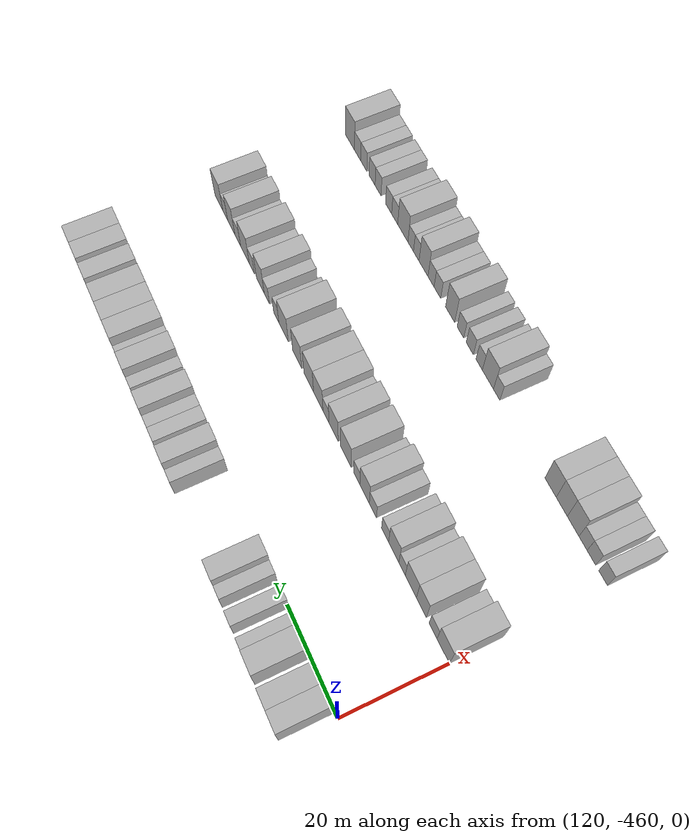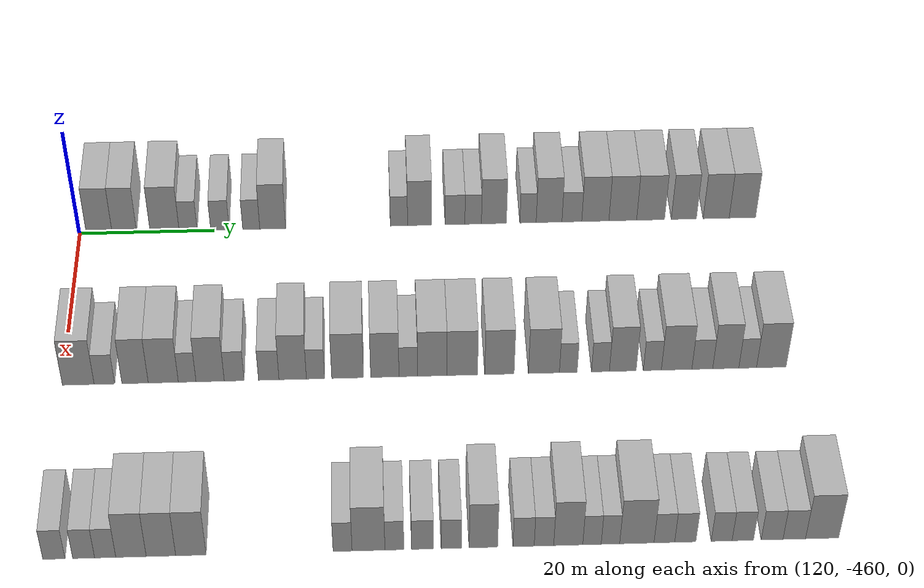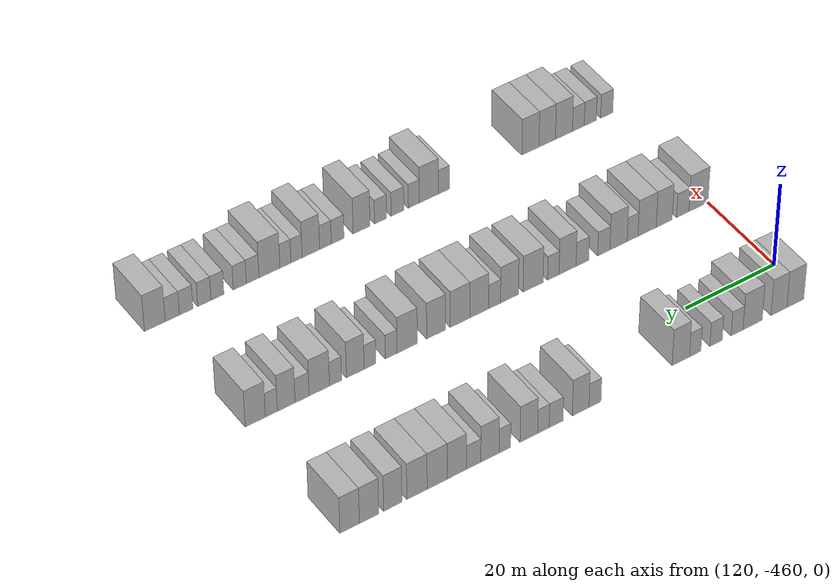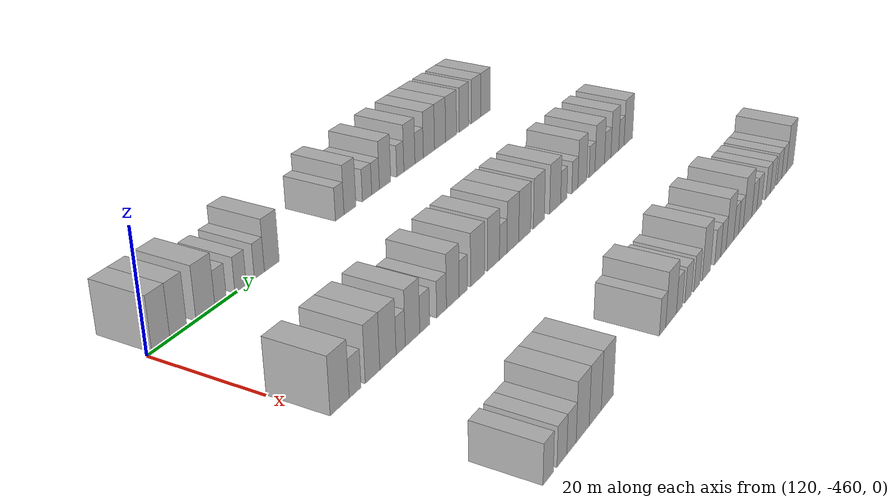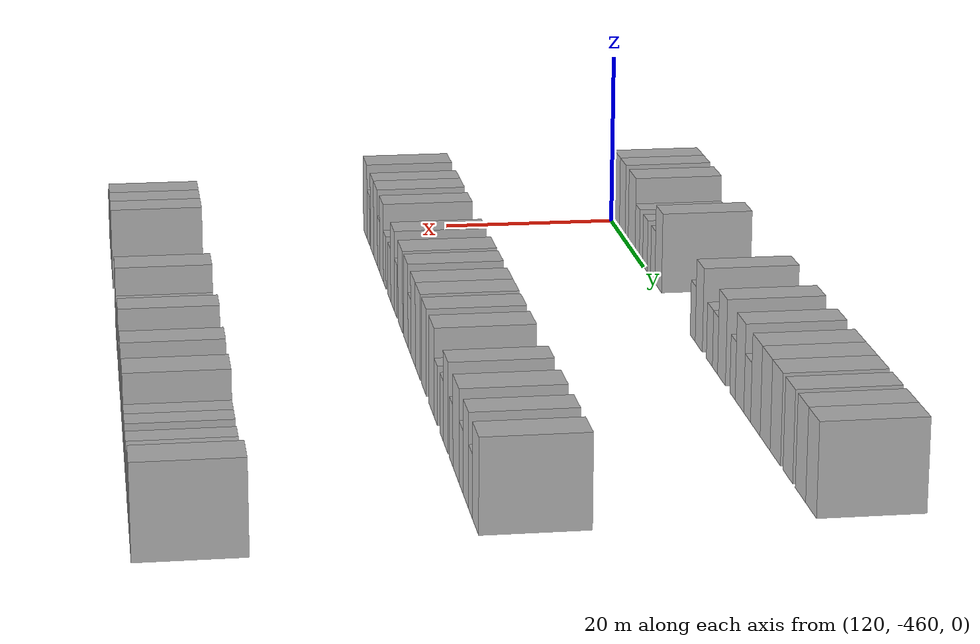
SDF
<sdf version="1.6">
 <world name="default">
  <model name="building_687">
   <static>1</static>
   <pose>115.0000 -457.0895 0 0.000000 0.000000 0.000000</pose>
   <link name="link">
    <pose>0 0 4.50 0 0 0</pose>
    <collision name="collision"><geometry><box><size>10.0000 3.8209 9.0000</size></box></geometry></collision>
    <visual name="visual">
     <cast_shadows>0</cast_shadows>
     <geometry><box><size>10.0000 3.8209 9.0000</size></box></geometry>
     <material>
      <script>
       <uri>model://HANNAS_wall/materials/scripts</uri>
       <uri>model://HANNAS_wall/materials/textures</uri>
       <name>vrc/HANNAS_wall</name>
      </script>
     </material>
    </visual>
   </link>
  </model>
  <model name="building_688">
   <static>1</static>
   <pose>115.0000 -453.3605 0 0.000000 0.000000 0.000000</pose>
   <link name="link">
    <pose>0 0 4.50 0 0 0</pose>
    <collision name="collision"><geometry><box><size>10.0000 3.6372 9.0000</size></box></geometry></collision>
    <visual name="visual">
     <cast_shadows>0</cast_shadows>
     <geometry><box><size>10.0000 3.6372 9.0000</size></box></geometry>
     <material>
      <script>
       <uri>model://HANNAS_wall/materials/scripts</uri>
       <uri>model://HANNAS_wall/materials/textures</uri>
       <name>vrc/HANNAS_wall</name>
      </script>
     </material>
    </visual>
   </link>
  </model>
  <model name="building_689">
   <static>1</static>
   <pose>115.0000 -447.3853 0 0.000000 0.000000 0.000000</pose>
   <link name="link">
    <pose>0 0 4.50 0 0 0</pose>
    <collision name="collision"><geometry><box><size>10.0000 4.3132 9.0000</size></box></geometry></collision>
    <visual name="visual">
     <cast_shadows>0</cast_shadows>
     <geometry><box><size>10.0000 4.3132 9.0000</size></box></geometry>
     <material>
      <script>
       <uri>model://HANNAS_wall/materials/scripts</uri>
       <uri>model://HANNAS_wall/materials/textures</uri>
       <name>vrc/HANNAS_wall</name>
      </script>
     </material>
    </visual>
   </link>
  </model>
  <model name="building_690">
   <static>1</static>
   <pose>115.0000 -443.8892 0 0.000000 0.000000 0.000000</pose>
   <link name="link">
    <pose>0 0 3.00 0 0 0</pose>
    <collision name="collision"><geometry><box><size>10.0000 2.6789 6.0000</size></box></geometry></collision>
    <visual name="visual">
     <cast_shadows>0</cast_shadows>
     <geometry><box><size>10.0000 2.6789 6.0000</size></box></geometry>
     <material>
      <script>
       <uri>model://HANNAS_wall/materials/scripts</uri>
       <uri>model://HANNAS_wall/materials/textures</uri>
       <name>vrc/HANNAS_wall</name>
      </script>
     </material>
    </visual>
   </link>
  </model>
  <model name="building_691">
   <static>1</static>
   <pose>115.0000 -439.1732 0 0.000000 0.000000 0.000000</pose>
   <link name="link">
    <pose>0 0 3.00 0 0 0</pose>
    <collision name="collision"><geometry><box><size>10.0000 2.7532 6.0000</size></box></geometry></collision>
    <visual name="visual">
     <cast_shadows>0</cast_shadows>
     <geometry><box><size>10.0000 2.7532 6.0000</size></box></geometry>
     <material>
      <script>
       <uri>model://HANNAS_wall/materials/scripts</uri>
       <uri>model://HANNAS_wall/materials/textures</uri>
       <name>vrc/HANNAS_wall</name>
      </script>
     </material>
    </visual>
   </link>
  </model>
  <model name="building_692">
   <static>1</static>
   <pose>115.0000 -434.5289 0 0.000000 0.000000 0.000000</pose>
   <link name="link">
    <pose>0 0 3.00 0 0 0</pose>
    <collision name="collision"><geometry><box><size>10.0000 2.5354 6.0000</size></box></geometry></collision>
    <visual name="visual">
     <cast_shadows>0</cast_shadows>
     <geometry><box><size>10.0000 2.5354 6.0000</size></box></geometry>
     <material>
      <script>
       <uri>model://HANNAS_wall/materials/scripts</uri>
       <uri>model://HANNAS_wall/materials/textures</uri>
       <name>vrc/HANNAS_wall</name>
      </script>
     </material>
    </visual>
   </link>
  </model>
  <model name="building_693">
   <static>1</static>
   <pose>115.0000 -431.3441 0 0.000000 0.000000 0.000000</pose>
   <link name="link">
    <pose>0 0 4.50 0 0 0</pose>
    <collision name="collision"><geometry><box><size>10.0000 3.8343 9.0000</size></box></geometry></collision>
    <visual name="visual">
     <cast_shadows>0</cast_shadows>
     <geometry><box><size>10.0000 3.8343 9.0000</size></box></geometry>
     <material>
      <script>
       <uri>model://HANNAS_wall/materials/scripts</uri>
       <uri>model://HANNAS_wall/materials/textures</uri>
       <name>vrc/HANNAS_wall</name>
      </script>
     </material>
    </visual>
   </link>
  </model>
  <model name="building_694">
   <static>1</static>
   <pose>115.0000 -412.5783 0 0.000000 0.000000 0.000000</pose>
   <link name="link">
    <pose>0 0 3.00 0 0 0</pose>
    <collision name="collision"><geometry><box><size>10.0000 2.5658 6.0000</size></box></geometry></collision>
    <visual name="visual">
     <cast_shadows>0</cast_shadows>
     <geometry><box><size>10.0000 2.5658 6.0000</size></box></geometry>
     <material>
      <script>
       <uri>model://HANNAS_wall/materials/scripts</uri>
       <uri>model://HANNAS_wall/materials/textures</uri>
       <name>vrc/HANNAS_wall</name>
      </script>
     </material>
    </visual>
   </link>
  </model>
  <model name="building_695">
   <static>1</static>
   <pose>115.0000 -409.4933 0 0.000000 0.000000 0.000000</pose>
   <link name="link">
    <pose>0 0 4.50 0 0 0</pose>
    <collision name="collision"><geometry><box><size>10.0000 3.6043 9.0000</size></box></geometry></collision>
    <visual name="visual">
     <cast_shadows>0</cast_shadows>
     <geometry><box><size>10.0000 3.6043 9.0000</size></box></geometry>
     <material>
      <script>
       <uri>model://HANNAS_wall/materials/scripts</uri>
       <uri>model://HANNAS_wall/materials/textures</uri>
       <name>vrc/HANNAS_wall</name>
      </script>
     </material>
    </visual>
   </link>
  </model>
  <model name="building_696">
   <static>1</static>
   <pose>115.0000 -404.2193 0 0.000000 0.000000 0.000000</pose>
   <link name="link">
    <pose>0 0 3.00 0 0 0</pose>
    <collision name="collision"><geometry><box><size>10.0000 2.9438 6.0000</size></box></geometry></collision>
    <visual name="visual">
     <cast_shadows>0</cast_shadows>
     <geometry><box><size>10.0000 2.9438 6.0000</size></box></geometry>
     <material>
      <script>
       <uri>model://HANNAS_wall/materials/scripts</uri>
       <uri>model://HANNAS_wall/materials/textures</uri>
       <name>vrc/HANNAS_wall</name>
      </script>
     </material>
    </visual>
   </link>
  </model>
  <model name="building_697">
   <static>1</static>
   <pose>115.0000 -401.5117 0 0.000000 0.000000 0.000000</pose>
   <link name="link">
    <pose>0 0 3.00 0 0 0</pose>
    <collision name="collision"><geometry><box><size>10.0000 2.4714 6.0000</size></box></geometry></collision>
    <visual name="visual">
     <cast_shadows>0</cast_shadows>
     <geometry><box><size>10.0000 2.4714 6.0000</size></box></geometry>
     <material>
      <script>
       <uri>model://HANNAS_wall/materials/scripts</uri>
       <uri>model://HANNAS_wall/materials/textures</uri>
       <name>vrc/HANNAS_wall</name>
      </script>
     </material>
    </visual>
   </link>
  </model>
  <model name="building_698">
   <static>1</static>
   <pose>115.0000 -398.4111 0 0.000000 0.000000 0.000000</pose>
   <link name="link">
    <pose>0 0 4.50 0 0 0</pose>
    <collision name="collision"><geometry><box><size>10.0000 3.7298 9.0000</size></box></geometry></collision>
    <visual name="visual">
     <cast_shadows>0</cast_shadows>
     <geometry><box><size>10.0000 3.7298 9.0000</size></box></geometry>
     <material>
      <script>
       <uri>model://HANNAS_wall/materials/scripts</uri>
       <uri>model://HANNAS_wall/materials/textures</uri>
       <name>vrc/HANNAS_wall</name>
      </script>
     </material>
    </visual>
   </link>
  </model>
  <model name="building_699">
   <static>1</static>
   <pose>115.0000 -393.3273 0 0.000000 0.000000 0.000000</pose>
   <link name="link">
    <pose>0 0 3.00 0 0 0</pose>
    <collision name="collision"><geometry><box><size>10.0000 2.4378 6.0000</size></box></geometry></collision>
    <visual name="visual">
     <cast_shadows>0</cast_shadows>
     <geometry><box><size>10.0000 2.4378 6.0000</size></box></geometry>
     <material>
      <script>
       <uri>model://HANNAS_wall/materials/scripts</uri>
       <uri>model://HANNAS_wall/materials/textures</uri>
       <name>vrc/HANNAS_wall</name>
      </script>
     </material>
    </visual>
   </link>
  </model>
  <model name="building_700">
   <static>1</static>
   <pose>115.0000 -390.1832 0 0.000000 0.000000 0.000000</pose>
   <link name="link">
    <pose>0 0 4.50 0 0 0</pose>
    <collision name="collision"><geometry><box><size>10.0000 3.8503 9.0000</size></box></geometry></collision>
    <visual name="visual">
     <cast_shadows>0</cast_shadows>
     <geometry><box><size>10.0000 3.8503 9.0000</size></box></geometry>
     <material>
      <script>
       <uri>model://HANNAS_wall/materials/scripts</uri>
       <uri>model://HANNAS_wall/materials/textures</uri>
       <name>vrc/HANNAS_wall</name>
      </script>
     </material>
    </visual>
   </link>
  </model>
  <model name="building_701">
   <static>1</static>
   <pose>115.0000 -386.7784 0 0.000000 0.000000 0.000000</pose>
   <link name="link">
    <pose>0 0 3.00 0 0 0</pose>
    <collision name="collision"><geometry><box><size>10.0000 2.9593 6.0000</size></box></geometry></collision>
    <visual name="visual">
     <cast_shadows>0</cast_shadows>
     <geometry><box><size>10.0000 2.9593 6.0000</size></box></geometry>
     <material>
      <script>
       <uri>model://HANNAS_wall/materials/scripts</uri>
       <uri>model://HANNAS_wall/materials/textures</uri>
       <name>vrc/HANNAS_wall</name>
      </script>
     </material>
    </visual>
   </link>
  </model>
  <model name="building_702">
   <static>1</static>
   <pose>115.0000 -383.2661 0 0.000000 0.000000 0.000000</pose>
   <link name="link">
    <pose>0 0 4.50 0 0 0</pose>
    <collision name="collision"><geometry><box><size>10.0000 4.0654 9.0000</size></box></geometry></collision>
    <visual name="visual">
     <cast_shadows>0</cast_shadows>
     <geometry><box><size>10.0000 4.0654 9.0000</size></box></geometry>
     <material>
      <script>
       <uri>model://HANNAS_wall/materials/scripts</uri>
       <uri>model://HANNAS_wall/materials/textures</uri>
       <name>vrc/HANNAS_wall</name>
      </script>
     </material>
    </visual>
   </link>
  </model>
  <model name="building_703">
   <static>1</static>
   <pose>115.0000 -379.1564 0 0.000000 0.000000 0.000000</pose>
   <link name="link">
    <pose>0 0 4.50 0 0 0</pose>
    <collision name="collision"><geometry><box><size>10.0000 4.1540 9.0000</size></box></geometry></collision>
    <visual name="visual">
     <cast_shadows>0</cast_shadows>
     <geometry><box><size>10.0000 4.1540 9.0000</size></box></geometry>
     <material>
      <script>
       <uri>model://HANNAS_wall/materials/scripts</uri>
       <uri>model://HANNAS_wall/materials/textures</uri>
       <name>vrc/HANNAS_wall</name>
      </script>
     </material>
    </visual>
   </link>
  </model>
  <model name="building_704">
   <static>1</static>
   <pose>115.0000 -374.9879 0 0.000000 0.000000 0.000000</pose>
   <link name="link">
    <pose>0 0 4.50 0 0 0</pose>
    <collision name="collision"><geometry><box><size>10.0000 4.1829 9.0000</size></box></geometry></collision>
    <visual name="visual">
     <cast_shadows>0</cast_shadows>
     <geometry><box><size>10.0000 4.1829 9.0000</size></box></geometry>
     <material>
      <script>
       <uri>model://HANNAS_wall/materials/scripts</uri>
       <uri>model://HANNAS_wall/materials/textures</uri>
       <name>vrc/HANNAS_wall</name>
      </script>
     </material>
    </visual>
   </link>
  </model>
  <model name="building_705">
   <static>1</static>
   <pose>115.0000 -370.0102 0 0.000000 0.000000 0.000000</pose>
   <link name="link">
    <pose>0 0 4.50 0 0 0</pose>
    <collision name="collision"><geometry><box><size>10.0000 3.7726 9.0000</size></box></geometry></collision>
    <visual name="visual">
     <cast_shadows>0</cast_shadows>
     <geometry><box><size>10.0000 3.7726 9.0000</size></box></geometry>
     <material>
      <script>
       <uri>model://HANNAS_wall/materials/scripts</uri>
       <uri>model://HANNAS_wall/materials/textures</uri>
       <name>vrc/HANNAS_wall</name>
      </script>
     </material>
    </visual>
   </link>
  </model>
  <model name="building_706">
   <static>1</static>
   <pose>115.0000 -365.1681 0 0.000000 0.000000 0.000000</pose>
   <link name="link">
    <pose>0 0 4.50 0 0 0</pose>
    <collision name="collision"><geometry><box><size>10.0000 3.9117 9.0000</size></box></geometry></collision>
    <visual name="visual">
     <cast_shadows>0</cast_shadows>
     <geometry><box><size>10.0000 3.9117 9.0000</size></box></geometry>
     <material>
      <script>
       <uri>model://HANNAS_wall/materials/scripts</uri>
       <uri>model://HANNAS_wall/materials/textures</uri>
       <name>vrc/HANNAS_wall</name>
      </script>
     </material>
    </visual>
   </link>
  </model>
  <model name="building_707">
   <static>1</static>
   <pose>115.0000 -361.2288 0 0.000000 0.000000 0.000000</pose>
   <link name="link">
    <pose>0 0 4.50 0 0 0</pose>
    <collision name="collision"><geometry><box><size>10.0000 3.9670 9.0000</size></box></geometry></collision>
    <visual name="visual">
     <cast_shadows>0</cast_shadows>
     <geometry><box><size>10.0000 3.9670 9.0000</size></box></geometry>
     <material>
      <script>
       <uri>model://HANNAS_wall/materials/scripts</uri>
       <uri>model://HANNAS_wall/materials/textures</uri>
       <name>vrc/HANNAS_wall</name>
      </script>
     </material>
    </visual>
   </link>
  </model>
  <model name="building_912">
   <static>1</static>
   <pose>145.0000 -457.7989 0 0.000000 0.000000 0.000000</pose>
   <link name="link">
    <pose>0 0 4.50 0 0 0</pose>
    <collision name="collision"><geometry><box><size>10.0000 4.4022 9.0000</size></box></geometry></collision>
    <visual name="visual">
     <cast_shadows>0</cast_shadows>
     <geometry><box><size>10.0000 4.4022 9.0000</size></box></geometry>
     <material>
      <script>
       <uri>model://HANNAS_wall/materials/scripts</uri>
       <uri>model://HANNAS_wall/materials/textures</uri>
       <name>vrc/HANNAS_wall</name>
      </script>
     </material>
    </visual>
   </link>
  </model>
  <model name="building_913">
   <static>1</static>
   <pose>145.0000 -454.1747 0 0.000000 0.000000 0.000000</pose>
   <link name="link">
    <pose>0 0 3.00 0 0 0</pose>
    <collision name="collision"><geometry><box><size>10.0000 2.8462 6.0000</size></box></geometry></collision>
    <visual name="visual">
     <cast_shadows>0</cast_shadows>
     <geometry><box><size>10.0000 2.8462 6.0000</size></box></geometry>
     <material>
      <script>
       <uri>model://HANNAS_wall/materials/scripts</uri>
       <uri>model://HANNAS_wall/materials/textures</uri>
       <name>vrc/HANNAS_wall</name>
      </script>
     </material>
    </visual>
   </link>
  </model>
  <model name="building_914">
   <static>1</static>
   <pose>145.0000 -449.9264 0 0.000000 0.000000 0.000000</pose>
   <link name="link">
    <pose>0 0 4.50 0 0 0</pose>
    <collision name="collision"><geometry><box><size>10.0000 3.6504 9.0000</size></box></geometry></collision>
    <visual name="visual">
     <cast_shadows>0</cast_shadows>
     <geometry><box><size>10.0000 3.6504 9.0000</size></box></geometry>
     <material>
      <script>
       <uri>model://HANNAS_wall/materials/scripts</uri>
       <uri>model://HANNAS_wall/materials/textures</uri>
       <name>vrc/HANNAS_wall</name>
      </script>
     </material>
    </visual>
   </link>
  </model>
  <model name="building_915">
   <static>1</static>
   <pose>145.0000 -446.0148 0 0.000000 0.000000 0.000000</pose>
   <link name="link">
    <pose>0 0 4.50 0 0 0</pose>
    <collision name="collision"><geometry><box><size>10.0000 4.1729 9.0000</size></box></geometry></collision>
    <visual name="visual">
     <cast_shadows>0</cast_shadows>
     <geometry><box><size>10.0000 4.1729 9.0000</size></box></geometry>
     <material>
      <script>
       <uri>model://HANNAS_wall/materials/scripts</uri>
       <uri>model://HANNAS_wall/materials/textures</uri>
       <name>vrc/HANNAS_wall</name>
      </script>
     </material>
    </visual>
   </link>
  </model>
  <model name="building_916">
   <static>1</static>
   <pose>145.0000 -442.7020 0 0.000000 0.000000 0.000000</pose>
   <link name="link">
    <pose>0 0 3.00 0 0 0</pose>
    <collision name="collision"><geometry><box><size>10.0000 2.4528 6.0000</size></box></geometry></collision>
    <visual name="visual">
     <cast_shadows>0</cast_shadows>
     <geometry><box><size>10.0000 2.4528 6.0000</size></box></geometry>
     <material>
      <script>
       <uri>model://HANNAS_wall/materials/scripts</uri>
       <uri>model://HANNAS_wall/materials/textures</uri>
       <name>vrc/HANNAS_wall</name>
      </script>
     </material>
    </visual>
   </link>
  </model>
  <model name="building_917">
   <static>1</static>
   <pose>145.0000 -439.5113 0 0.000000 0.000000 0.000000</pose>
   <link name="link">
    <pose>0 0 4.50 0 0 0</pose>
    <collision name="collision"><geometry><box><size>10.0000 3.9284 9.0000</size></box></geometry></collision>
    <visual name="visual">
     <cast_shadows>0</cast_shadows>
     <geometry><box><size>10.0000 3.9284 9.0000</size></box></geometry>
     <material>
      <script>
       <uri>model://HANNAS_wall/materials/scripts</uri>
       <uri>model://HANNAS_wall/materials/textures</uri>
       <name>vrc/HANNAS_wall</name>
      </script>
     </material>
    </visual>
   </link>
  </model>
  <model name="building_918">
   <static>1</static>
   <pose>145.0000 -436.1663 0 0.000000 0.000000 0.000000</pose>
   <link name="link">
    <pose>0 0 3.00 0 0 0</pose>
    <collision name="collision"><geometry><box><size>10.0000 2.7617 6.0000</size></box></geometry></collision>
    <visual name="visual">
     <cast_shadows>0</cast_shadows>
     <geometry><box><size>10.0000 2.7617 6.0000</size></box></geometry>
     <material>
      <script>
       <uri>model://HANNAS_wall/materials/scripts</uri>
       <uri>model://HANNAS_wall/materials/textures</uri>
       <name>vrc/HANNAS_wall</name>
      </script>
     </material>
    </visual>
   </link>
  </model>
  <model name="building_919">
   <static>1</static>
   <pose>145.0000 -431.3639 0 0.000000 0.000000 0.000000</pose>
   <link name="link">
    <pose>0 0 3.00 0 0 0</pose>
    <collision name="collision"><geometry><box><size>10.0000 2.8430 6.0000</size></box></geometry></collision>
    <visual name="visual">
     <cast_shadows>0</cast_shadows>
     <geometry><box><size>10.0000 2.8430 6.0000</size></box></geometry>
     <material>
      <script>
       <uri>model://HANNAS_wall/materials/scripts</uri>
       <uri>model://HANNAS_wall/materials/textures</uri>
       <name>vrc/HANNAS_wall</name>
      </script>
     </material>
    </visual>
   </link>
  </model>
  <model name="building_920">
   <static>1</static>
   <pose>145.0000 -428.0373 0 0.000000 0.000000 0.000000</pose>
   <link name="link">
    <pose>0 0 4.50 0 0 0</pose>
    <collision name="collision"><geometry><box><size>10.0000 3.8101 9.0000</size></box></geometry></collision>
    <visual name="visual">
     <cast_shadows>0</cast_shadows>
     <geometry><box><size>10.0000 3.8101 9.0000</size></box></geometry>
     <material>
      <script>
       <uri>model://HANNAS_wall/materials/scripts</uri>
       <uri>model://HANNAS_wall/materials/textures</uri>
       <name>vrc/HANNAS_wall</name>
      </script>
     </material>
    </visual>
   </link>
  </model>
  <model name="building_921">
   <static>1</static>
   <pose>145.0000 -424.8645 0 0.000000 0.000000 0.000000</pose>
   <link name="link">
    <pose>0 0 3.00 0 0 0</pose>
    <collision name="collision"><geometry><box><size>10.0000 2.5356 6.0000</size></box></geometry></collision>
    <visual name="visual">
     <cast_shadows>0</cast_shadows>
     <geometry><box><size>10.0000 2.5356 6.0000</size></box></geometry>
     <material>
      <script>
       <uri>model://HANNAS_wall/materials/scripts</uri>
       <uri>model://HANNAS_wall/materials/textures</uri>
       <name>vrc/HANNAS_wall</name>
      </script>
     </material>
    </visual>
   </link>
  </model>
  <model name="building_922">
   <static>1</static>
   <pose>145.0000 -420.3850 0 0.000000 0.000000 0.000000</pose>
   <link name="link">
    <pose>0 0 4.50 0 0 0</pose>
    <collision name="collision"><geometry><box><size>10.0000 4.4234 9.0000</size></box></geometry></collision>
    <visual name="visual">
     <cast_shadows>0</cast_shadows>
     <geometry><box><size>10.0000 4.4234 9.0000</size></box></geometry>
     <material>
      <script>
       <uri>model://HANNAS_wall/materials/scripts</uri>
       <uri>model://HANNAS_wall/materials/textures</uri>
       <name>vrc/HANNAS_wall</name>
      </script>
     </material>
    </visual>
   </link>
  </model>
  <model name="building_923">
   <static>1</static>
   <pose>145.0000 -415.2059 0 0.000000 0.000000 0.000000</pose>
   <link name="link">
    <pose>0 0 4.50 0 0 0</pose>
    <collision name="collision"><geometry><box><size>10.0000 3.9348 9.0000</size></box></geometry></collision>
    <visual name="visual">
     <cast_shadows>0</cast_shadows>
     <geometry><box><size>10.0000 3.9348 9.0000</size></box></geometry>
     <material>
      <script>
       <uri>model://HANNAS_wall/materials/scripts</uri>
       <uri>model://HANNAS_wall/materials/textures</uri>
       <name>vrc/HANNAS_wall</name>
      </script>
     </material>
    </visual>
   </link>
  </model>
  <model name="building_924">
   <static>1</static>
   <pose>145.0000 -411.9417 0 0.000000 0.000000 0.000000</pose>
   <link name="link">
    <pose>0 0 3.00 0 0 0</pose>
    <collision name="collision"><geometry><box><size>10.0000 2.5937 6.0000</size></box></geometry></collision>
    <visual name="visual">
     <cast_shadows>0</cast_shadows>
     <geometry><box><size>10.0000 2.5937 6.0000</size></box></geometry>
     <material>
      <script>
       <uri>model://HANNAS_wall/materials/scripts</uri>
       <uri>model://HANNAS_wall/materials/textures</uri>
       <name>vrc/HANNAS_wall</name>
      </script>
     </material>
    </visual>
   </link>
  </model>
  <model name="building_925">
   <static>1</static>
   <pose>145.0000 -408.5975 0 0.000000 0.000000 0.000000</pose>
   <link name="link">
    <pose>0 0 4.50 0 0 0</pose>
    <collision name="collision"><geometry><box><size>10.0000 4.0947 9.0000</size></box></geometry></collision>
    <visual name="visual">
     <cast_shadows>0</cast_shadows>
     <geometry><box><size>10.0000 4.0947 9.0000</size></box></geometry>
     <material>
      <script>
       <uri>model://HANNAS_wall/materials/scripts</uri>
       <uri>model://HANNAS_wall/materials/textures</uri>
       <name>vrc/HANNAS_wall</name>
      </script>
     </material>
    </visual>
   </link>
  </model>
  <model name="building_926">
   <static>1</static>
   <pose>145.0000 -404.4101 0 0.000000 0.000000 0.000000</pose>
   <link name="link">
    <pose>0 0 4.50 0 0 0</pose>
    <collision name="collision"><geometry><box><size>10.0000 4.2801 9.0000</size></box></geometry></collision>
    <visual name="visual">
     <cast_shadows>0</cast_shadows>
     <geometry><box><size>10.0000 4.2801 9.0000</size></box></geometry>
     <material>
      <script>
       <uri>model://HANNAS_wall/materials/scripts</uri>
       <uri>model://HANNAS_wall/materials/textures</uri>
       <name>vrc/HANNAS_wall</name>
      </script>
     </material>
    </visual>
   </link>
  </model>
  <model name="building_927">
   <static>1</static>
   <pose>145.0000 -399.2185 0 0.000000 0.000000 0.000000</pose>
   <link name="link">
    <pose>0 0 4.50 0 0 0</pose>
    <collision name="collision"><geometry><box><size>10.0000 4.1031 9.0000</size></box></geometry></collision>
    <visual name="visual">
     <cast_shadows>0</cast_shadows>
     <geometry><box><size>10.0000 4.1031 9.0000</size></box></geometry>
     <material>
      <script>
       <uri>model://HANNAS_wall/materials/scripts</uri>
       <uri>model://HANNAS_wall/materials/textures</uri>
       <name>vrc/HANNAS_wall</name>
      </script>
     </material>
    </visual>
   </link>
  </model>
  <model name="building_928">
   <static>1</static>
   <pose>145.0000 -392.9979 0 0.000000 0.000000 0.000000</pose>
   <link name="link">
    <pose>0 0 4.50 0 0 0</pose>
    <collision name="collision"><geometry><box><size>10.0000 4.3382 9.0000</size></box></geometry></collision>
    <visual name="visual">
     <cast_shadows>0</cast_shadows>
     <geometry><box><size>10.0000 4.3382 9.0000</size></box></geometry>
     <material>
      <script>
       <uri>model://HANNAS_wall/materials/scripts</uri>
       <uri>model://HANNAS_wall/materials/textures</uri>
       <name>vrc/HANNAS_wall</name>
      </script>
     </material>
    </visual>
   </link>
  </model>
  <model name="building_929">
   <static>1</static>
   <pose>145.0000 -389.5846 0 0.000000 0.000000 0.000000</pose>
   <link name="link">
    <pose>0 0 3.00 0 0 0</pose>
    <collision name="collision"><geometry><box><size>10.0000 2.4885 6.0000</size></box></geometry></collision>
    <visual name="visual">
     <cast_shadows>0</cast_shadows>
     <geometry><box><size>10.0000 2.4885 6.0000</size></box></geometry>
     <material>
      <script>
       <uri>model://HANNAS_wall/materials/scripts</uri>
       <uri>model://HANNAS_wall/materials/textures</uri>
       <name>vrc/HANNAS_wall</name>
      </script>
     </material>
    </visual>
   </link>
  </model>
  <model name="building_930">
   <static>1</static>
   <pose>145.0000 -385.0871 0 0.000000 0.000000 0.000000</pose>
   <link name="link">
    <pose>0 0 3.00 0 0 0</pose>
    <collision name="collision"><geometry><box><size>10.0000 2.5064 6.0000</size></box></geometry></collision>
    <visual name="visual">
     <cast_shadows>0</cast_shadows>
     <geometry><box><size>10.0000 2.5064 6.0000</size></box></geometry>
     <material>
      <script>
       <uri>model://HANNAS_wall/materials/scripts</uri>
       <uri>model://HANNAS_wall/materials/textures</uri>
       <name>vrc/HANNAS_wall</name>
      </script>
     </material>
    </visual>
   </link>
  </model>
  <model name="building_931">
   <static>1</static>
   <pose>145.0000 -381.9576 0 0.000000 0.000000 0.000000</pose>
   <link name="link">
    <pose>0 0 4.50 0 0 0</pose>
    <collision name="collision"><geometry><box><size>10.0000 3.7526 9.0000</size></box></geometry></collision>
    <visual name="visual">
     <cast_shadows>0</cast_shadows>
     <geometry><box><size>10.0000 3.7526 9.0000</size></box></geometry>
     <material>
      <script>
       <uri>model://HANNAS_wall/materials/scripts</uri>
       <uri>model://HANNAS_wall/materials/textures</uri>
       <name>vrc/HANNAS_wall</name>
      </script>
     </material>
    </visual>
   </link>
  </model>
  <model name="building_932">
   <static>1</static>
   <pose>145.0000 -377.8148 0 0.000000 0.000000 0.000000</pose>
   <link name="link">
    <pose>0 0 3.00 0 0 0</pose>
    <collision name="collision"><geometry><box><size>10.0000 2.5330 6.0000</size></box></geometry></collision>
    <visual name="visual">
     <cast_shadows>0</cast_shadows>
     <geometry><box><size>10.0000 2.5330 6.0000</size></box></geometry>
     <material>
      <script>
       <uri>model://HANNAS_wall/materials/scripts</uri>
       <uri>model://HANNAS_wall/materials/textures</uri>
       <name>vrc/HANNAS_wall</name>
      </script>
     </material>
    </visual>
   </link>
  </model>
  <model name="building_933">
   <static>1</static>
   <pose>145.0000 -374.4097 0 0.000000 0.000000 0.000000</pose>
   <link name="link">
    <pose>0 0 4.50 0 0 0</pose>
    <collision name="collision"><geometry><box><size>10.0000 4.2773 9.0000</size></box></geometry></collision>
    <visual name="visual">
     <cast_shadows>0</cast_shadows>
     <geometry><box><size>10.0000 4.2773 9.0000</size></box></geometry>
     <material>
      <script>
       <uri>model://HANNAS_wall/materials/scripts</uri>
       <uri>model://HANNAS_wall/materials/textures</uri>
       <name>vrc/HANNAS_wall</name>
      </script>
     </material>
    </visual>
   </link>
  </model>
  <model name="building_934">
   <static>1</static>
   <pose>145.0000 -370.8080 0 0.000000 0.000000 0.000000</pose>
   <link name="link">
    <pose>0 0 3.00 0 0 0</pose>
    <collision name="collision"><geometry><box><size>10.0000 2.9260 6.0000</size></box></geometry></collision>
    <visual name="visual">
     <cast_shadows>0</cast_shadows>
     <geometry><box><size>10.0000 2.9260 6.0000</size></box></geometry>
     <material>
      <script>
       <uri>model://HANNAS_wall/materials/scripts</uri>
       <uri>model://HANNAS_wall/materials/textures</uri>
       <name>vrc/HANNAS_wall</name>
      </script>
     </material>
    </visual>
   </link>
  </model>
  <model name="building_935">
   <static>1</static>
   <pose>145.0000 -367.5120 0 0.000000 0.000000 0.000000</pose>
   <link name="link">
    <pose>0 0 4.50 0 0 0</pose>
    <collision name="collision"><geometry><box><size>10.0000 3.6662 9.0000</size></box></geometry></collision>
    <visual name="visual">
     <cast_shadows>0</cast_shadows>
     <geometry><box><size>10.0000 3.6662 9.0000</size></box></geometry>
     <material>
      <script>
       <uri>model://HANNAS_wall/materials/scripts</uri>
       <uri>model://HANNAS_wall/materials/textures</uri>
       <name>vrc/HANNAS_wall</name>
      </script>
     </material>
    </visual>
   </link>
  </model>
  <model name="building_936">
   <static>1</static>
   <pose>145.0000 -364.4337 0 0.000000 0.000000 0.000000</pose>
   <link name="link">
    <pose>0 0 3.00 0 0 0</pose>
    <collision name="collision"><geometry><box><size>10.0000 2.4903 6.0000</size></box></geometry></collision>
    <visual name="visual">
     <cast_shadows>0</cast_shadows>
     <geometry><box><size>10.0000 2.4903 6.0000</size></box></geometry>
     <material>
      <script>
       <uri>model://HANNAS_wall/materials/scripts</uri>
       <uri>model://HANNAS_wall/materials/textures</uri>
       <name>vrc/HANNAS_wall</name>
      </script>
     </material>
    </visual>
   </link>
  </model>
  <model name="building_937">
   <static>1</static>
   <pose>145.0000 -361.1114 0 0.000000 0.000000 0.000000</pose>
   <link name="link">
    <pose>0 0 4.50 0 0 0</pose>
    <collision name="collision"><geometry><box><size>10.0000 4.1544 9.0000</size></box></geometry></collision>
    <visual name="visual">
     <cast_shadows>0</cast_shadows>
     <geometry><box><size>10.0000 4.1544 9.0000</size></box></geometry>
     <material>
      <script>
       <uri>model://HANNAS_wall/materials/scripts</uri>
       <uri>model://HANNAS_wall/materials/textures</uri>
       <name>vrc/HANNAS_wall</name>
      </script>
     </material>
    </visual>
   </link>
  </model>
  <model name="building_1153">
   <static>1</static>
   <pose>175.0000 -458.5691 0 0.000000 0.000000 0.000000</pose>
   <link name="link">
    <pose>0 0 3.00 0 0 0</pose>
    <collision name="collision"><geometry><box><size>10.0000 2.8618 6.0000</size></box></geometry></collision>
    <visual name="visual">
     <cast_shadows>0</cast_shadows>
     <geometry><box><size>10.0000 2.8618 6.0000</size></box></geometry>
     <material>
      <script>
       <uri>model://HANNAS_wall/materials/scripts</uri>
       <uri>model://HANNAS_wall/materials/textures</uri>
       <name>vrc/HANNAS_wall</name>
      </script>
     </material>
    </visual>
   </link>
  </model>
  <model name="building_1154">
   <static>1</static>
   <pose>175.0000 -454.7284 0 0.000000 0.000000 0.000000</pose>
   <link name="link">
    <pose>0 0 3.00 0 0 0</pose>
    <collision name="collision"><geometry><box><size>10.0000 2.8198 6.0000</size></box></geometry></collision>
    <visual name="visual">
     <cast_shadows>0</cast_shadows>
     <geometry><box><size>10.0000 2.8198 6.0000</size></box></geometry>
     <material>
      <script>
       <uri>model://HANNAS_wall/materials/scripts</uri>
       <uri>model://HANNAS_wall/materials/textures</uri>
       <name>vrc/HANNAS_wall</name>
      </script>
     </material>
    </visual>
   </link>
  </model>
  <model name="building_1155">
   <static>1</static>
   <pose>175.0000 -451.9525 0 0.000000 0.000000 0.000000</pose>
   <link name="link">
    <pose>0 0 3.00 0 0 0</pose>
    <collision name="collision"><geometry><box><size>10.0000 2.7318 6.0000</size></box></geometry></collision>
    <visual name="visual">
     <cast_shadows>0</cast_shadows>
     <geometry><box><size>10.0000 2.7318 6.0000</size></box></geometry>
     <material>
      <script>
       <uri>model://HANNAS_wall/materials/scripts</uri>
       <uri>model://HANNAS_wall/materials/textures</uri>
       <name>vrc/HANNAS_wall</name>
      </script>
     </material>
    </visual>
   </link>
  </model>
  <model name="building_1156">
   <static>1</static>
   <pose>175.0000 -448.6205 0 0.000000 0.000000 0.000000</pose>
   <link name="link">
    <pose>0 0 4.50 0 0 0</pose>
    <collision name="collision"><geometry><box><size>10.0000 3.9323 9.0000</size></box></geometry></collision>
    <visual name="visual">
     <cast_shadows>0</cast_shadows>
     <geometry><box><size>10.0000 3.9323 9.0000</size></box></geometry>
     <material>
      <script>
       <uri>model://HANNAS_wall/materials/scripts</uri>
       <uri>model://HANNAS_wall/materials/textures</uri>
       <name>vrc/HANNAS_wall</name>
      </script>
     </material>
    </visual>
   </link>
  </model>
  <model name="building_1157">
   <static>1</static>
   <pose>175.0000 -444.7479 0 0.000000 0.000000 0.000000</pose>
   <link name="link">
    <pose>0 0 4.50 0 0 0</pose>
    <collision name="collision"><geometry><box><size>10.0000 3.8129 9.0000</size></box></geometry></collision>
    <visual name="visual">
     <cast_shadows>0</cast_shadows>
     <geometry><box><size>10.0000 3.8129 9.0000</size></box></geometry>
     <material>
      <script>
       <uri>model://HANNAS_wall/materials/scripts</uri>
       <uri>model://HANNAS_wall/materials/textures</uri>
       <name>vrc/HANNAS_wall</name>
      </script>
     </material>
    </visual>
   </link>
  </model>
  <model name="building_1158">
   <static>1</static>
   <pose>175.0000 -440.8733 0 0.000000 0.000000 0.000000</pose>
   <link name="link">
    <pose>0 0 4.50 0 0 0</pose>
    <collision name="collision"><geometry><box><size>10.0000 3.9363 9.0000</size></box></geometry></collision>
    <visual name="visual">
     <cast_shadows>0</cast_shadows>
     <geometry><box><size>10.0000 3.9363 9.0000</size></box></geometry>
     <material>
      <script>
       <uri>model://HANNAS_wall/materials/scripts</uri>
       <uri>model://HANNAS_wall/materials/textures</uri>
       <name>vrc/HANNAS_wall</name>
      </script>
     </material>
    </visual>
   </link>
  </model>
  <model name="building_1159">
   <static>1</static>
   <pose>175.0000 -421.2213 0 0.000000 0.000000 0.000000</pose>
   <link name="link">
    <pose>0 0 3.00 0 0 0</pose>
    <collision name="collision"><geometry><box><size>10.0000 2.4559 6.0000</size></box></geometry></collision>
    <visual name="visual">
     <cast_shadows>0</cast_shadows>
     <geometry><box><size>10.0000 2.4559 6.0000</size></box></geometry>
     <material>
      <script>
       <uri>model://HANNAS_wall/materials/scripts</uri>
       <uri>model://HANNAS_wall/materials/textures</uri>
       <name>vrc/HANNAS_wall</name>
      </script>
     </material>
    </visual>
   </link>
  </model>
  <model name="building_1160">
   <static>1</static>
   <pose>175.0000 -417.8623 0 0.000000 0.000000 0.000000</pose>
   <link name="link">
    <pose>0 0 4.50 0 0 0</pose>
    <collision name="collision"><geometry><box><size>10.0000 4.2622 9.0000</size></box></geometry></collision>
    <visual name="visual">
     <cast_shadows>0</cast_shadows>
     <geometry><box><size>10.0000 4.2622 9.0000</size></box></geometry>
     <material>
      <script>
       <uri>model://HANNAS_wall/materials/scripts</uri>
       <uri>model://HANNAS_wall/materials/textures</uri>
       <name>vrc/HANNAS_wall</name>
      </script>
     </material>
    </visual>
   </link>
  </model>
  <model name="building_1161">
   <static>1</static>
   <pose>175.0000 -414.4977 0 0.000000 0.000000 0.000000</pose>
   <link name="link">
    <pose>0 0 3.00 0 0 0</pose>
    <collision name="collision"><geometry><box><size>10.0000 2.4670 6.0000</size></box></geometry></collision>
    <visual name="visual">
     <cast_shadows>0</cast_shadows>
     <geometry><box><size>10.0000 2.4670 6.0000</size></box></geometry>
     <material>
      <script>
       <uri>model://HANNAS_wall/materials/scripts</uri>
       <uri>model://HANNAS_wall/materials/textures</uri>
       <name>vrc/HANNAS_wall</name>
      </script>
     </material>
    </visual>
   </link>
  </model>
  <model name="building_1162">
   <static>1</static>
   <pose>175.0000 -410.8450 0 0.000000 0.000000 0.000000</pose>
   <link name="link">
    <pose>0 0 3.00 0 0 0</pose>
    <collision name="collision"><geometry><box><size>10.0000 2.8384 6.0000</size></box></geometry></collision>
    <visual name="visual">
     <cast_shadows>0</cast_shadows>
     <geometry><box><size>10.0000 2.8384 6.0000</size></box></geometry>
     <material>
      <script>
       <uri>model://HANNAS_wall/materials/scripts</uri>
       <uri>model://HANNAS_wall/materials/textures</uri>
       <name>vrc/HANNAS_wall</name>
      </script>
     </material>
    </visual>
   </link>
  </model>
  <model name="building_1163">
   <static>1</static>
   <pose>175.0000 -407.1074 0 0.000000 0.000000 0.000000</pose>
   <link name="link">
    <pose>0 0 3.00 0 0 0</pose>
    <collision name="collision"><geometry><box><size>10.0000 2.6368 6.0000</size></box></geometry></collision>
    <visual name="visual">
     <cast_shadows>0</cast_shadows>
     <geometry><box><size>10.0000 2.6368 6.0000</size></box></geometry>
     <material>
      <script>
       <uri>model://HANNAS_wall/materials/scripts</uri>
       <uri>model://HANNAS_wall/materials/textures</uri>
       <name>vrc/HANNAS_wall</name>
      </script>
     </material>
    </visual>
   </link>
  </model>
  <model name="building_1164">
   <static>1</static>
   <pose>175.0000 -402.9327 0 0.000000 0.000000 0.000000</pose>
   <link name="link">
    <pose>0 0 4.50 0 0 0</pose>
    <collision name="collision"><geometry><box><size>10.0000 3.7127 9.0000</size></box></geometry></collision>
    <visual name="visual">
     <cast_shadows>0</cast_shadows>
     <geometry><box><size>10.0000 3.7127 9.0000</size></box></geometry>
     <material>
      <script>
       <uri>model://HANNAS_wall/materials/scripts</uri>
       <uri>model://HANNAS_wall/materials/textures</uri>
       <name>vrc/HANNAS_wall</name>
      </script>
     </material>
    </visual>
   </link>
  </model>
  <model name="building_1165">
   <static>1</static>
   <pose>175.0000 -397.6964 0 0.000000 0.000000 0.000000</pose>
   <link name="link">
    <pose>0 0 3.00 0 0 0</pose>
    <collision name="collision"><geometry><box><size>10.0000 2.7601 6.0000</size></box></geometry></collision>
    <visual name="visual">
     <cast_shadows>0</cast_shadows>
     <geometry><box><size>10.0000 2.7601 6.0000</size></box></geometry>
     <material>
      <script>
       <uri>model://HANNAS_wall/materials/scripts</uri>
       <uri>model://HANNAS_wall/materials/textures</uri>
       <name>vrc/HANNAS_wall</name>
      </script>
     </material>
    </visual>
   </link>
  </model>
  <model name="building_1166">
   <static>1</static>
   <pose>175.0000 -395.0437 0 0.000000 0.000000 0.000000</pose>
   <link name="link">
    <pose>0 0 3.00 0 0 0</pose>
    <collision name="collision"><geometry><box><size>10.0000 2.5453 6.0000</size></box></geometry></collision>
    <visual name="visual">
     <cast_shadows>0</cast_shadows>
     <geometry><box><size>10.0000 2.5453 6.0000</size></box></geometry>
     <material>
      <script>
       <uri>model://HANNAS_wall/materials/scripts</uri>
       <uri>model://HANNAS_wall/materials/textures</uri>
       <name>vrc/HANNAS_wall</name>
      </script>
     </material>
    </visual>
   </link>
  </model>
  <model name="building_1167">
   <static>1</static>
   <pose>175.0000 -391.8764 0 0.000000 0.000000 0.000000</pose>
   <link name="link">
    <pose>0 0 4.50 0 0 0</pose>
    <collision name="collision"><geometry><box><size>10.0000 3.7893 9.0000</size></box></geometry></collision>
    <visual name="visual">
     <cast_shadows>0</cast_shadows>
     <geometry><box><size>10.0000 3.7893 9.0000</size></box></geometry>
     <material>
      <script>
       <uri>model://HANNAS_wall/materials/scripts</uri>
       <uri>model://HANNAS_wall/materials/textures</uri>
       <name>vrc/HANNAS_wall</name>
      </script>
     </material>
    </visual>
   </link>
  </model>
  <model name="building_1168">
   <static>1</static>
   <pose>175.0000 -388.7798 0 0.000000 0.000000 0.000000</pose>
   <link name="link">
    <pose>0 0 3.00 0 0 0</pose>
    <collision name="collision"><geometry><box><size>10.0000 2.4038 6.0000</size></box></geometry></collision>
    <visual name="visual">
     <cast_shadows>0</cast_shadows>
     <geometry><box><size>10.0000 2.4038 6.0000</size></box></geometry>
     <material>
      <script>
       <uri>model://HANNAS_wall/materials/scripts</uri>
       <uri>model://HANNAS_wall/materials/textures</uri>
       <name>vrc/HANNAS_wall</name>
      </script>
     </material>
    </visual>
   </link>
  </model>
  <model name="building_1169">
   <static>1</static>
   <pose>175.0000 -386.3720 0 0.000000 0.000000 0.000000</pose>
   <link name="link">
    <pose>0 0 3.00 0 0 0</pose>
    <collision name="collision"><geometry><box><size>10.0000 2.4119 6.0000</size></box></geometry></collision>
    <visual name="visual">
     <cast_shadows>0</cast_shadows>
     <geometry><box><size>10.0000 2.4119 6.0000</size></box></geometry>
     <material>
      <script>
       <uri>model://HANNAS_wall/materials/scripts</uri>
       <uri>model://HANNAS_wall/materials/textures</uri>
       <name>vrc/HANNAS_wall</name>
      </script>
     </material>
    </visual>
   </link>
  </model>
  <model name="building_1170">
   <static>1</static>
   <pose>175.0000 -382.9215 0 0.000000 0.000000 0.000000</pose>
   <link name="link">
    <pose>0 0 4.50 0 0 0</pose>
    <collision name="collision"><geometry><box><size>10.0000 4.4891 9.0000</size></box></geometry></collision>
    <visual name="visual">
     <cast_shadows>0</cast_shadows>
     <geometry><box><size>10.0000 4.4891 9.0000</size></box></geometry>
     <material>
      <script>
       <uri>model://HANNAS_wall/materials/scripts</uri>
       <uri>model://HANNAS_wall/materials/textures</uri>
       <name>vrc/HANNAS_wall</name>
      </script>
     </material>
    </visual>
   </link>
  </model>
  <model name="building_1171">
   <static>1</static>
   <pose>175.0000 -379.3297 0 0.000000 0.000000 0.000000</pose>
   <link name="link">
    <pose>0 0 3.00 0 0 0</pose>
    <collision name="collision"><geometry><box><size>10.0000 2.6944 6.0000</size></box></geometry></collision>
    <visual name="visual">
     <cast_shadows>0</cast_shadows>
     <geometry><box><size>10.0000 2.6944 6.0000</size></box></geometry>
     <material>
      <script>
       <uri>model://HANNAS_wall/materials/scripts</uri>
       <uri>model://HANNAS_wall/materials/textures</uri>
       <name>vrc/HANNAS_wall</name>
      </script>
     </material>
    </visual>
   </link>
  </model>
  <model name="building_1172">
   <static>1</static>
   <pose>175.0000 -376.5941 0 0.000000 0.000000 0.000000</pose>
   <link name="link">
    <pose>0 0 3.00 0 0 0</pose>
    <collision name="collision"><geometry><box><size>10.0000 2.7768 6.0000</size></box></geometry></collision>
    <visual name="visual">
     <cast_shadows>0</cast_shadows>
     <geometry><box><size>10.0000 2.7768 6.0000</size></box></geometry>
     <material>
      <script>
       <uri>model://HANNAS_wall/materials/scripts</uri>
       <uri>model://HANNAS_wall/materials/textures</uri>
       <name>vrc/HANNAS_wall</name>
      </script>
     </material>
    </visual>
   </link>
  </model>
  <model name="building_1173">
   <static>1</static>
   <pose>175.0000 -371.8365 0 0.000000 0.000000 0.000000</pose>
   <link name="link">
    <pose>0 0 3.00 0 0 0</pose>
    <collision name="collision"><geometry><box><size>10.0000 2.7383 6.0000</size></box></geometry></collision>
    <visual name="visual">
     <cast_shadows>0</cast_shadows>
     <geometry><box><size>10.0000 2.7383 6.0000</size></box></geometry>
     <material>
      <script>
       <uri>model://HANNAS_wall/materials/scripts</uri>
       <uri>model://HANNAS_wall/materials/textures</uri>
       <name>vrc/HANNAS_wall</name>
      </script>
     </material>
    </visual>
   </link>
  </model>
  <model name="building_1174">
   <static>1</static>
   <pose>175.0000 -369.0671 0 0.000000 0.000000 0.000000</pose>
   <link name="link">
    <pose>0 0 3.00 0 0 0</pose>
    <collision name="collision"><geometry><box><size>10.0000 2.8005 6.0000</size></box></geometry></collision>
    <visual name="visual">
     <cast_shadows>0</cast_shadows>
     <geometry><box><size>10.0000 2.8005 6.0000</size></box></geometry>
     <material>
      <script>
       <uri>model://HANNAS_wall/materials/scripts</uri>
       <uri>model://HANNAS_wall/materials/textures</uri>
       <name>vrc/HANNAS_wall</name>
      </script>
     </material>
    </visual>
   </link>
  </model>
  <model name="building_1175">
   <static>1</static>
   <pose>175.0000 -365.2352 0 0.000000 0.000000 0.000000</pose>
   <link name="link">
    <pose>0 0 3.00 0 0 0</pose>
    <collision name="collision"><geometry><box><size>10.0000 2.8633 6.0000</size></box></geometry></collision>
    <visual name="visual">
     <cast_shadows>0</cast_shadows>
     <geometry><box><size>10.0000 2.8633 6.0000</size></box></geometry>
     <material>
      <script>
       <uri>model://HANNAS_wall/materials/scripts</uri>
       <uri>model://HANNAS_wall/materials/textures</uri>
       <name>vrc/HANNAS_wall</name>
      </script>
     </material>
    </visual>
   </link>
  </model>
  <model name="building_1176">
   <static>1</static>
   <pose>175.0000 -362.3272 0 0.000000 0.000000 0.000000</pose>
   <link name="link">
    <pose>0 0 3.00 0 0 0</pose>
    <collision name="collision"><geometry><box><size>10.0000 2.9528 6.0000</size></box></geometry></collision>
    <visual name="visual">
     <cast_shadows>0</cast_shadows>
     <geometry><box><size>10.0000 2.9528 6.0000</size></box></geometry>
     <material>
      <script>
       <uri>model://HANNAS_wall/materials/scripts</uri>
       <uri>model://HANNAS_wall/materials/textures</uri>
       <name>vrc/HANNAS_wall</name>
      </script>
     </material>
    </visual>
   </link>
  </model>
  <model name="building_1177">
   <static>1</static>
   <pose>175.0000 -358.6790 0 0.000000 0.000000 0.000000</pose>
   <link name="link">
    <pose>0 0 4.50 0 0 0</pose>
    <collision name="collision"><geometry><box><size>10.0000 4.3436 9.0000</size></box></geometry></collision>
    <visual name="visual">
     <cast_shadows>0</cast_shadows>
     <geometry><box><size>10.0000 4.3436 9.0000</size></box></geometry>
     <material>
      <script>
       <uri>model://HANNAS_wall/materials/scripts</uri>
       <uri>model://HANNAS_wall/materials/textures</uri>
       <name>vrc/HANNAS_wall</name>
      </script>
     </material>
    </visual>
   </link>
  </model>
 </world>
</sdf>
